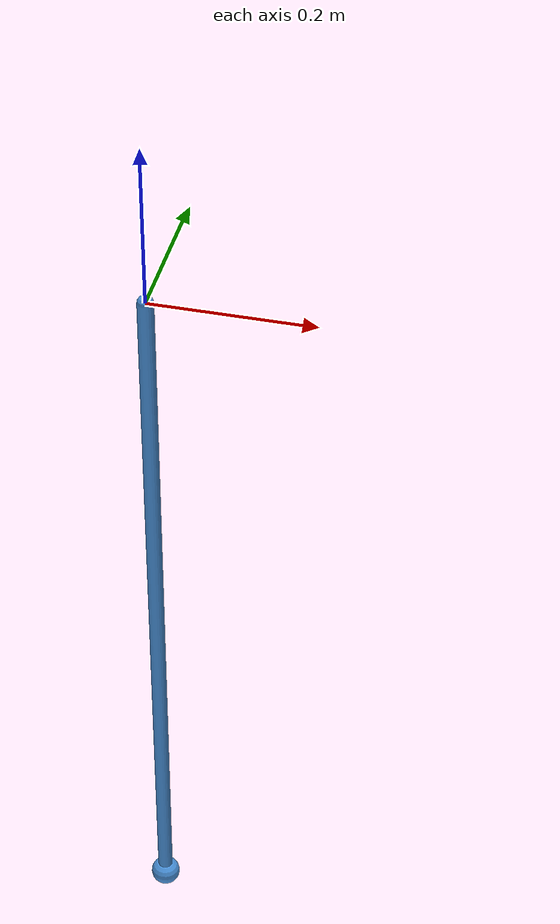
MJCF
<mujoco model="simple_pendulum_point_mass">
  <compiler angle="radian" inertiafromgeom="true"/>
  <option gravity="0 0 -9.81" integrator="RK4" timestep="0.001"/>
  <worldbody>
    <light pos="2 2 3" dir="-1 -1 -2"/>
    <body name="pendulum" pos="0 0 0">
      <joint name="hinge" type="hinge" axis="0 1 0" limited="false" damping="0"/>
      <geom name="rod" fromto="0 0 0   0 0 -1.0" mass="1e-6" type="capsule" size="0.01" rgba="0.3 0.6 0.9 1" contype="0" conaffinity="0"/>
      <geom name="bob" type="sphere" pos="0 0 -1.0" size="0.02" mass="1.0" rgba="0.3 0.6 0.9 1" contype="0" conaffinity="0"/>
      <site name="tip" pos="0 0 -1.0" size="0.02" rgba="1 0.3 0.3 1"/>
    </body>
  </worldbody>
  <actuator>
    <motor name="u" joint="hinge" gear="1" ctrlrange="-10 10"/>
  </actuator>
  <sensor>
    <jointpos   name="theta"    joint="hinge"/>
    <jointvel   name="thetadot" joint="hinge"/>
    <actuatorfrc name="tau"      actuator="u"/>
  </sensor>
</mujoco>
